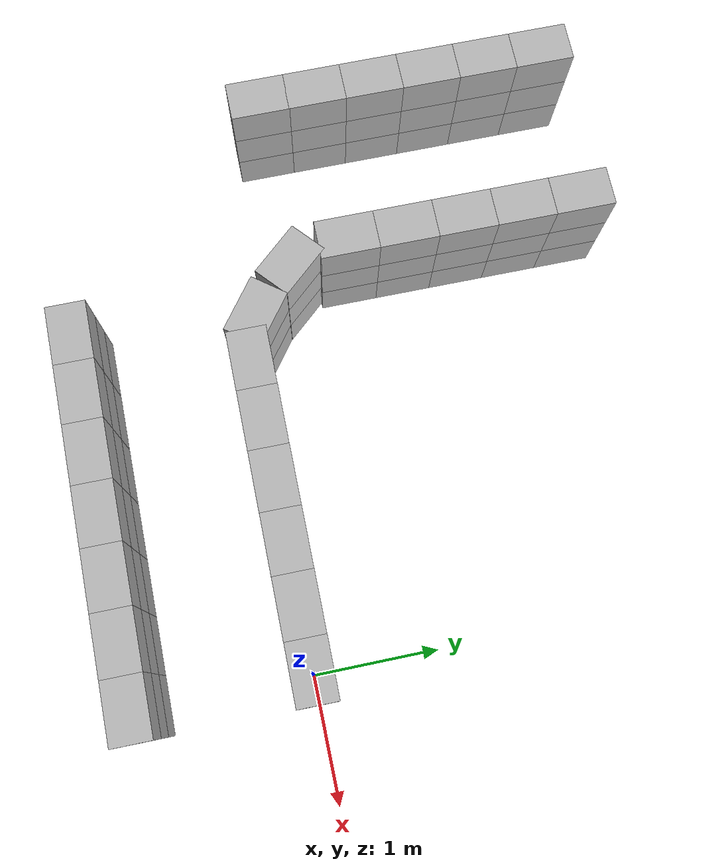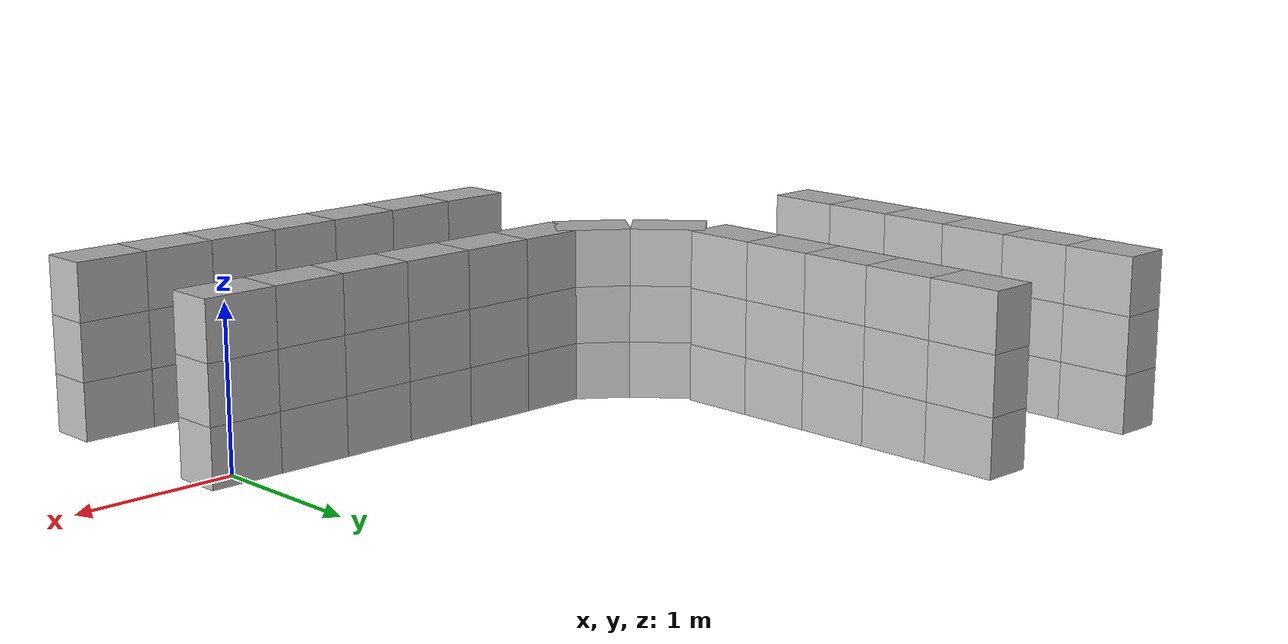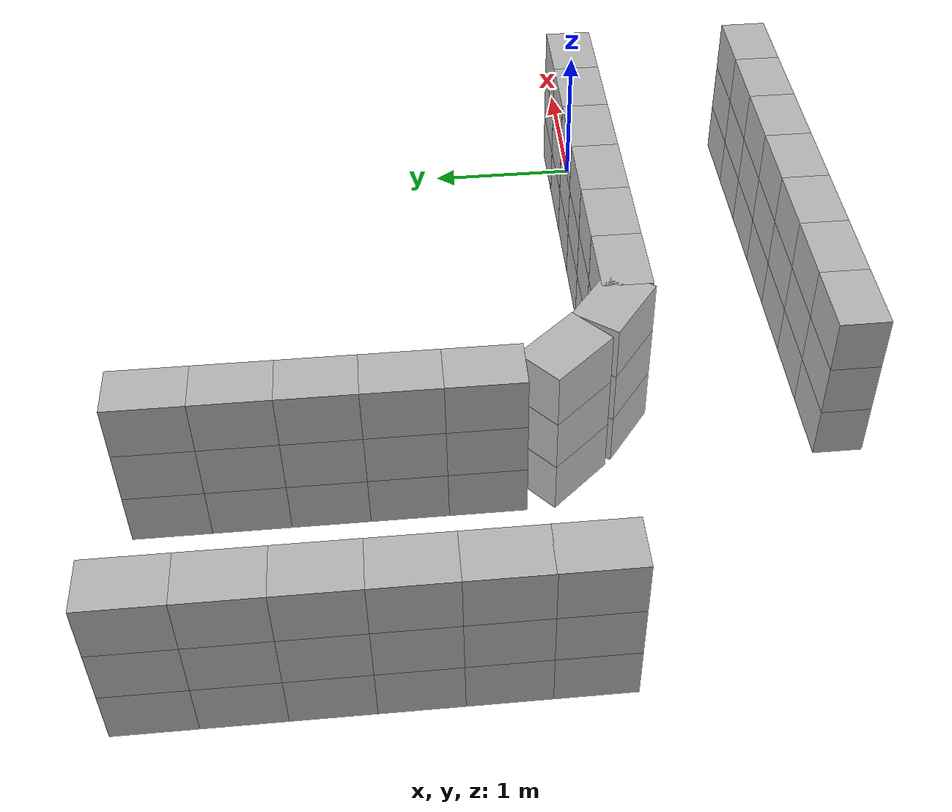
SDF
<?xml version='1_0'?>
<sdf version="1.5">
  <model name="realistic_curve">
    <pose>0 0 0 0 0 1.57079633</pose>
    <static>true</static>
    <!-- 1st row -->
    <link name="link_0">
      <collision name="collision_0">
        <pose>0 0 0.18 0 0 3.14</pose>
        <geometry>
          <box>
            <size>0.31 0.465 0.36</size>
          </box>
        </geometry>
      </collision>
      <visual name='visual_0'>
        <pose>0 0 0.18 0 0 3.14</pose>
        <geometry>
            <mesh>
              <uri>model://L-corridor_curve_real/meshes/exact_blue_circle_border.dae</uri>
            </mesh>
        </geometry>
      </visual>
    </link>

    <link name="link_1">
      <collision name="collision_1">
        <pose>0 0 0.54 0 0 3.14</pose>
        <geometry>
          <box>
            <size>0.31 0.465 0.36</size>
          </box>
        </geometry>
      </collision>
      <visual name='visual_1'>
        <pose>0 0 0.54 0 0 3.14</pose>
        <geometry>
            <mesh>
              <uri>model://L-corridor_curve_real/meshes/exact_red_circle_border.dae</uri>
            </mesh>
        </geometry>
      </visual>
    </link>

    <link name="link_2">
      <collision name="collision_2">
        <pose>0 0 0.9 0 0 3.14</pose>
        <geometry>
          <box>
            <size>0.31 0.465 0.36</size>
          </box>
        </geometry>
      </collision>
      <visual name='visual_2'>
        <pose>0 0 0.9 0 0 3.14</pose>
        <geometry>
            <mesh>
              <uri>model://L-corridor_curve_real/meshes/exact_green_circle_border.dae</uri>
            </mesh>
        </geometry>
      </visual>
    </link>
	<!-- 2 row -->
    <link name="link_3">
      <collision name="collision_3">
        <pose>0 0.465 0.54 0 0 3.14</pose>
        <geometry>
          <box>
            <size>0.31 0.465 0.36</size>
          </box>
        </geometry>
      </collision>
      <visual name='visual_3'>
        <pose>0 0.465 0.54 0 0 3.14</pose>
        <geometry>
            <mesh>
              <uri>model://L-corridor_curve_real/meshes/exact_blue_circle_border.dae</uri>
            </mesh>
        </geometry>
      </visual>
    </link>

    <link name="link_4">
      <collision name="collision_4">
        <pose>0 0.465 0.9 0 0 3.14</pose>
        <geometry>
          <box>
            <size>0.31 0.465 0.36</size>
          </box>
        </geometry>
      </collision>
      <visual name='visual_4'>
        <pose>0 0.465 0.9 0 0 3.14</pose>
        <geometry>
            <mesh>
              <uri>model://L-corridor_curve_real/meshes/exact_red_circle_border.dae</uri>
            </mesh>
        </geometry>
      </visual>
    </link>

    <link name="link_5">
      <collision name="collision_5">
        <pose>0 0.465 0.18 0 0 3.14</pose>
        <geometry>
          <box>
            <size>0.31 0.465 0.36</size>
          </box>
        </geometry>
      </collision>
      <visual name='visual_5'>
        <pose>0 0.465 0.18 0 0 3.14</pose>
        <geometry>
            <mesh>
              <uri>model://L-corridor_curve_real/meshes/exact_green_circle_border.dae</uri>
            </mesh>
        </geometry>
      </visual>
    </link>
	<!-- 3 row -->
    <link name="link_6">
      <collision name="collision_6">
        <pose>0 0.93 0.9 0 0 3.14</pose>
        <geometry>
          <box>
            <size>0.31 0.465 0.36</size>
          </box>
        </geometry>
      </collision>
      <visual name='visual_6'>
        <pose>0 0.93 0.9 0 0 3.14</pose>
        <geometry>
            <mesh>
              <uri>model://L-corridor_curve_real/meshes/exact_blue_circle_border.dae</uri>
            </mesh>
        </geometry>
      </visual>
    </link>

    <link name="link_7">
      <collision name="collision_7">
        <pose>0 0.93 0.18 0 0 3.14</pose>
        <geometry>
          <box>
            <size>0.31 0.465 0.36</size>
          </box>
        </geometry>
      </collision>
      <visual name='visual_7'>
        <pose>0 0.93 0.18 0 0 3.14</pose>
        <geometry>
            <mesh>
              <uri>model://L-corridor_curve_real/meshes/exact_red_circle_border.dae</uri>
            </mesh>
        </geometry>
      </visual>
    </link>

    <link name="link_8">
      <collision name="collision_8">
        <pose>0 0.93 0.54 0 0 3.14</pose>
        <geometry>
          <box>
            <size>0.31 0.465 0.36</size>
          </box>
        </geometry>
      </collision>
      <visual name='visual_8'>
        <pose>0 0.93 0.54 0 0 3.14</pose>
        <geometry>
            <mesh>
              <uri>model://L-corridor_curve_real/meshes/exact_green_circle_border.dae</uri>
            </mesh>
        </geometry>
      </visual>
    </link>

    <!-- 4 row -->
    <link name="link_9">
      <collision name="collision_9">
        <pose>0 1.395 0.18 0 0 3.14</pose>
        <geometry>
          <box>
            <size>0.31 0.465 0.36</size>
          </box>
        </geometry>
      </collision>
      <visual name='visual_9'>
        <pose>0 1.395 0.18 0 0 3.14</pose>
        <geometry>
            <mesh>
              <uri>model://L-corridor_curve_real/meshes/exact_blue_circle_border.dae</uri>
            </mesh>
        </geometry>
      </visual>
    </link>

    <link name="link_10">
      <collision name="collision_10">
        <pose>0 1.395 0.54 0 0 3.14</pose>
        <geometry>
          <box>
            <size>0.31 0.465 0.36</size>
          </box>
        </geometry>
      </collision>
      <visual name='visual_10'>
        <pose>0 1.395 0.54 0 0 3.14</pose>
        <geometry>
            <mesh>
              <uri>model://L-corridor_curve_real/meshes/exact_red_circle_border.dae</uri>
            </mesh>
        </geometry>
      </visual>
    </link>

    <link name="link_11">
      <collision name="collision_11">
        <pose>0 1.395 0.9 0 0 3.14</pose>
        <geometry>
          <box>
            <size>0.31 0.465 0.36</size>
          </box>
        </geometry>
      </collision>
      <visual name='visual_11'>
        <pose>0 1.395 0.9 0 0 3.14</pose>
        <geometry>
            <mesh>
              <uri>model://L-corridor_curve_real/meshes/exact_green_circle_border.dae</uri>
            </mesh>
        </geometry>
      </visual>
    </link>
	<!-- 5 row -->
    <link name="link_12">
      <collision name="collision_12">
        <pose>0 1.86 0.54 0 0 3.14</pose>
        <geometry>
          <box>
            <size>0.31 0.465 0.36</size>
          </box>
        </geometry>
      </collision>
      <visual name='visual_12'>
        <pose>0 1.86 0.54 0 0 3.14</pose>
        <geometry>
            <mesh>
              <uri>model://L-corridor_curve_real/meshes/exact_blue_circle_border.dae</uri>
            </mesh>
        </geometry>
      </visual>
    </link>

    <link name="link_13">
      <collision name="collision_13">
        <pose>0 1.86 0.9 0 0 3.14</pose>
        <geometry>
          <box>
            <size>0.31 0.465 0.36</size>
          </box>
        </geometry>
      </collision>
      <visual name='visual_13'>
        <pose>0 1.86 0.9 0 0 3.14</pose>
        <geometry>
            <mesh>
              <uri>model://L-corridor_curve_real/meshes/exact_red_circle_border.dae</uri>
            </mesh>
        </geometry>
      </visual>
    </link>

    <link name="link_14">
      <collision name="collision_14">
        <pose>0 1.86 0.18 0 0 3.14</pose>
        <geometry>
          <box>
            <size>0.31 0.465 0.36</size>
          </box>
        </geometry>
      </collision>
      <visual name='visual_14'>
        <pose>0 1.86 0.18 0 0 3.14</pose>
        <geometry>
            <mesh>
              <uri>model://L-corridor_curve_real/meshes/exact_green_circle_border.dae</uri>
            </mesh>
        </geometry>
      </visual>
    </link>
	<!-- 6 row -->
    <link name="link_15">
      <collision name="collision_15">
        <pose>0 2.325 0 0 3.14</pose>
        <geometry>
          <box>
            <size>0.31 0.465 0.36</size>
          </box>
        </geometry>
      </collision>
      <visual name='visual_15'>
        <pose>0 2.325 0.9 0 0 3.14</pose>
        <geometry>
            <mesh>
              <uri>model://L-corridor_curve_real/meshes/exact_blue_circle_border.dae</uri>
            </mesh>
        </geometry>
      </visual>
    </link>

    <link name="link_16">
      <collision name="collision_16">
        <pose>0 2.325 0.18 0 0 3.14</pose>
        <geometry>
          <box>
            <size>0.31 0.465 0.36</size>
          </box>
        </geometry>
      </collision>
      <visual name='visual_16'>
        <pose>0 2.325 0.18 0 0 3.14</pose>
        <geometry>
            <mesh>
              <uri>model://L-corridor_curve_real/meshes/exact_red_circle_border.dae</uri>
            </mesh>
        </geometry>
      </visual>
    </link>

    <link name="link_17">
      <collision name="collision_17">
        <pose>0 2.325 0.54 0 0 3.14</pose>
        <geometry>
          <box>
            <size>0.31 0.465 0.36</size>
          </box>
        </geometry>
      </collision>
      <visual name='visual_17'>
        <pose>0 2.325 0.54 0 0 3.14</pose>
        <geometry>
            <mesh>
              <uri>model://L-corridor_curve_real/meshes/exact_green_circle_border.dae</uri>
            </mesh>
        </geometry>
      </visual>
    </link>
	<!-- 7 row -->
    <link name="link_18">
      <collision name="collision_18">
        <pose>0.1 2.68 0.18 0 0 2.5</pose>
        <geometry>
          <box>
            <size>0.31 0.465 0.36</size>
          </box>
        </geometry>
      </collision>
      <visual name='visual_18'>
        <pose>0.1 2.68 0.18 0 0 2.5</pose>
        <geometry>
            <mesh>
              <uri>model://L-corridor_curve_real/meshes/exact_blue_circle_border.dae</uri>
            </mesh>
        </geometry>
      </visual>
    </link>
    <link name="link_19">
      <collision name="collision_19">
        <pose>0.1 2.68 0.54 0 0 2.5</pose>
        <geometry>
          <box>
            <size>0.31 0.465 0.36</size>
          </box>
        </geometry>
      </collision>
      <visual name='visual_19'>
        <pose>0.1 2.68 0.54 0 0 2.5</pose>
        <geometry>
            <mesh>
              <uri>model://L-corridor_curve_real/meshes/exact_red_circle_border.dae</uri>
            </mesh>
        </geometry>
      </visual>
    </link>

    <link name="link_20">
      <collision name="collision_20">
        <pose>0.1 2.68 0.9 0 0 2.5</pose>
        <geometry>
          <box>
            <size>0.31 0.465 0.36</size>
          </box>
        </geometry>
      </collision>
      <visual name='visual_20'>
        <pose>0.1 2.68 0.9 0 0 2.5</pose>
        <geometry>
            <mesh>
              <uri>model://L-corridor_curve_real/meshes/exact_green_circle_border.dae</uri>
            </mesh>
        </geometry>
      </visual>
    </link>
	<!-- 8 row -->
    <link name="link_21">
      <collision name="collision_21">
        <pose>0.43 3.035 0.54 0 0 2.3</pose>
        <geometry>
          <box>
            <size>0.31 0.465 0.36</size>
          </box>
        </geometry>
      </collision>
      <visual name='visual_21'>
        <pose>0.43 3.035 0.54 0 0 2.3</pose>
        <geometry>
            <mesh>
              <uri>model://L-corridor_curve_real/meshes/exact_blue_circle_border.dae</uri>
            </mesh>
        </geometry>
      </visual>
    </link>

    <link name="link_22">
      <collision name="collision_22">
        <pose>0.43 2.325 0.9 0 0 2.3</pose>
        <geometry>
          <box>
            <size>0.31 0.465 0.36</size>
          </box>
        </geometry>
      </collision>
      <visual name='visual_22'>
        <pose>0.43 3.035 0.9 0 0 2.3</pose>
        <geometry>
            <mesh>
              <uri>model://L-corridor_curve_real/meshes/exact_red_circle_border.dae</uri>
            </mesh>
        </geometry>
      </visual>
    </link>

    <link name="link_23">
      <collision name="collision_23">
        <pose>0.43 3.035 0.18 0 0 2.3</pose>
        <geometry>
          <box>
            <size>0.31 0.465 0.36</size>
          </box>
        </geometry>
      </collision>
      <visual name='visual_23'>
        <pose>0.43 3.035 0.18 0 0 2.3</pose>
        <geometry>
            <mesh>
              <uri>model://L-corridor_curve_real/meshes/exact_green_circle_border.dae</uri>
            </mesh>
        </geometry>
      </visual>
    </link>

	<!-- 9 row -->
    <link name="link_24">
      <collision name="collision_24">
        <pose>0.9 3.15 0.9 0 1.5708</pose>
        <geometry>
          <box>
            <size>0.31 0.465 0.36</size>
          </box>
        </geometry>
      </collision>
      <visual name='visual_24'>
        <pose>0.9 3.15 0.9 0 0 1.5708</pose>
        <geometry>
            <mesh>
              <uri>model://L-corridor_curve_real/meshes/exact_blue_circle_border.dae</uri>
            </mesh>
        </geometry>
      </visual>
    </link>

    <link name="link_25">
      <collision name="collision_25">
        <pose>0.9 3.15 0.18 0 0 1.5708</pose>
        <geometry>
          <box>
            <size>0.31 0.465 0.36</size>
          </box>
        </geometry>
      </collision>
      <visual name='visual_25'>
        <pose>0.9 3.15 0.18 0 0 1.5708</pose>
        <geometry>
            <mesh>
              <uri>model://L-corridor_curve_real/meshes/exact_red_circle_border.dae</uri>
            </mesh>
        </geometry>
      </visual>
    </link>

    <link name="link_26">
      <collision name="collision_26">
        <pose>0.9 3.15 0.54 0 0 1.5708</pose>
        <geometry>
          <box>
            <size>0.31 0.465 0.36</size>
          </box>
        </geometry>
      </collision>
      <visual name='visual_26'>
        <pose>0.9 3.15 0.54 0 0 1.5708</pose>
        <geometry>
            <mesh>
              <uri>model://L-corridor_curve_real/meshes/exact_green_circle_border.dae</uri>
            </mesh>
        </geometry>
      </visual>
    </link>

	<!-- 10 row -->
    <link name="link_27">
      <collision name="collision_27">
        <pose>1.365 3.15 0.18 0 0 1.5708</pose>
        <geometry>
          <box>
            <size>0.31 0.465 0.36</size>
          </box>
        </geometry>
      </collision>
      <visual name='visual_27'>
        <pose>1.365 3.15 0.18 0 0 1.5708</pose>
        <geometry>
            <mesh>
              <uri>model://L-corridor_curve_real/meshes/exact_blue_circle_border.dae</uri>
            </mesh>
        </geometry>
      </visual>
    </link>
    <link name="link_28">
      <collision name="collision_28">
        <pose>1.365 3.15 0.54 0 0 1.5708</pose>
        <geometry>
          <box>
            <size>0.31 0.465 0.36</size>
          </box>
        </geometry>
      </collision>
      <visual name='visual_28'>
        <pose>1.365 3.15 0.54 0 0 1.5708</pose>
        <geometry>
            <mesh>
              <uri>model://L-corridor_curve_real/meshes/exact_red_circle_border.dae</uri>
            </mesh>
        </geometry>
      </visual>
    </link>

    <link name="link_29">
      <collision name="collision_29">
        <pose>1.365 3.15 0.9 0 0 1.5708</pose>
        <geometry>
          <box>
            <size>0.31 0.465 0.36</size>
          </box>
        </geometry>
      </collision>
      <visual name='visual_29'>
        <pose>1.365 3.15 0.9 0 0 1.5708</pose>
        <geometry>
            <mesh>
              <uri>model://L-corridor_curve_real/meshes/exact_green_circle_border.dae</uri>
            </mesh>
        </geometry>
      </visual>
    </link>

	<!-- 11 row -->
    <link name="link_30">
      <collision name="collision_30">
        <pose>1.83 3.15 0.54 0 0 1.5708</pose>
        <geometry>
          <box>
            <size>0.31 0.465 0.36</size>
          </box>
        </geometry>
      </collision>
      <visual name='visual_30'>
        <pose>1.83 3.15 0.54 0 0 1.5708</pose>
        <geometry>
            <mesh>
              <uri>model://L-corridor_curve_real/meshes/exact_blue_circle_border.dae</uri>
            </mesh>
        </geometry>
      </visual>
    </link>

    <link name="link_31">
      <collision name="collision_31">
        <pose>1.83 3.15 0.9 0 0 1.5708</pose>
        <geometry>
          <box>
            <size>0.31 0.465 0.36</size>
          </box>
        </geometry>
      </collision>
      <visual name='visual_31'>
        <pose>1.83 3.15 0.9 0 0 1.5708</pose>
        <geometry>
            <mesh>
              <uri>model://L-corridor_curve_real/meshes/exact_red_circle_border.dae</uri>
            </mesh>
        </geometry>
      </visual>
    </link>

    <link name="link_32">
      <collision name="collision_32">
        <pose>1.83 3.15 0.18 0 0 1.5708</pose>
        <geometry>
          <box>
            <size>0.31 0.465 0.36</size>
          </box>
        </geometry>
      </collision>
      <visual name='visual_32'>
        <pose>1.83 3.15 0.18 0 0 1.5708</pose>
        <geometry>
            <mesh>
              <uri>model://L-corridor_curve_real/meshes/exact_green_circle_border.dae</uri>
            </mesh>
        </geometry>
      </visual>
    </link>

	<!-- 12 row -->
    <link name="link_33">
      <collision name="collision_33">
        <pose>2.295 3.15 0.9 0 1.5708</pose>
        <geometry>
          <box>
            <size>0.31 0.465 0.36</size>
          </box>
        </geometry>
      </collision>
      <visual name='visual_33'>
        <pose>2.295 3.15 0.9 0 0 1.5708</pose>
        <geometry>
            <mesh>
              <uri>model://L-corridor_curve_real/meshes/exact_blue_circle_border.dae</uri>
            </mesh>
        </geometry>
      </visual>
    </link>

    <link name="link_34">
      <collision name="collision_34">
        <pose>2.295 3.15 0.18 0 0 1.5708</pose>
        <geometry>
          <box>
            <size>0.31 0.465 0.36</size>
          </box>
        </geometry>
      </collision>
      <visual name='visual_34'>
        <pose>2.295 3.15 0.18 0 0 1.5708</pose>
        <geometry>
            <mesh>
              <uri>model://L-corridor_curve_real/meshes/exact_red_circle_border.dae</uri>
            </mesh>
        </geometry>
      </visual>
    </link>

    <link name="link_35">
      <collision name="collision_35">
        <pose>2.295 3.15 0.54 0 0 1.5708</pose>
        <geometry>
          <box>
            <size>0.31 0.465 0.36</size>
          </box>
        </geometry>
      </collision>
      <visual name='visual_35'>
        <pose>2.295 3.15 0.54 0 0 1.5708</pose>
        <geometry>
            <mesh>
              <uri>model://L-corridor_curve_real/meshes/exact_green_circle_border.dae</uri>
            </mesh>
        </geometry>
      </visual>
    </link>

	<!-- 10 row -->
    <link name="link_36">
      <collision name="collision_36">
        <pose>2.76 3.15 0.18 0 0 1.5708</pose>
        <geometry>
          <box>
            <size>0.31 0.465 0.36</size>
          </box>
        </geometry>
      </collision>
      <visual name='visual_36'>
        <pose>2.76 3.15 0.18 0 0 1.5708</pose>
        <geometry>
            <mesh>
              <uri>model://L-corridor_curve_real/meshes/exact_blue_circle_border.dae</uri>
            </mesh>
        </geometry>
      </visual>
    </link>
    <link name="link_37">
      <collision name="collision_37">
        <pose>2.76 3.15 0.54 0 0 1.5708</pose>
        <geometry>
          <box>
            <size>0.31 0.465 0.36</size>
          </box>
        </geometry>
      </collision>
      <visual name='visual_37'>
        <pose>2.76 3.15 0.54 0 0 1.5708</pose>
        <geometry>
            <mesh>
              <uri>model://L-corridor_curve_real/meshes/exact_red_circle_border.dae</uri>
            </mesh>
        </geometry>
      </visual>
    </link>

    <link name="link_38">
      <collision name="collision_38">
        <pose>2.76 3.15 0.9 0 0 1.5708</pose>
        <geometry>
          <box>
            <size>0.31 0.465 0.36</size>
          </box>
        </geometry>
      </collision>
      <visual name='visual_38'>
        <pose>2.76 3.15 0.9 0 0 1.5708</pose>
        <geometry>
            <mesh>
              <uri>model://L-corridor_curve_real/meshes/exact_green_circle_border.dae</uri>
            </mesh>
        </geometry>
      </visual>
    </link>

<!--1st corridor wall facing-->
   <!-- 1st row -->
    <link name="link_0_0">
      <collision name="collision_0_0">
        <pose>-1.3 0 0.18 0 0 0</pose>
        <geometry>
          <box>
            <size>0.31 0.465 0.36</size>
          </box>
        </geometry>
      </collision>
      <visual name='visual_0_0'>
        <pose>-1.3 0 0.18 0 0 0</pose>
        <geometry>
            <mesh>
              <uri>model://L-corridor_curve_real/meshes/exact_blue_circle_border.dae</uri>
            </mesh>
        </geometry>
      </visual>
    </link>

    <link name="link_1_0">
      <collision name="collision_1_0">
        <pose> -1.3 0.54 0 0 0</pose>
        <geometry>
          <box>
            <size>0.31 0.465 0.36</size>
          </box>
        </geometry>
      </collision>
      <visual name='visual_1_0'>
        <pose>-1.3 0 0.54 0 0 0</pose>
        <geometry>
            <mesh>
              <uri>model://L-corridor_curve_real/meshes/exact_red_circle_border.dae</uri>
            </mesh>
        </geometry>
      </visual>
    </link>

    <link name="link_2_0">
      <collision name="collision_2_0">
        <pose>-1.3 0 0.9 0 0 0</pose>
        <geometry>
          <box>
            <size>0.31 0.465 0.36</size>
          </box>
        </geometry>
      </collision>
      <visual name='visual_2_0'>
        <pose>-1.3 0 0.9 0 0 0</pose>
        <geometry>
            <mesh>
              <uri>model://L-corridor_curve_real/meshes/exact_green_circle_border.dae</uri>
            </mesh>
        </geometry>
      </visual>
    </link>
	<!-- 2 row -->
    <link name="link_3_0">
      <collision name="collision_3_0">
        <pose>-1.3 0.465 0.54 0 0 0</pose>
        <geometry>
          <box>
            <size>0.31 0.465 0.36</size>
          </box>
        </geometry>
      </collision>
      <visual name='visual_3_0'>
        <pose>-1.3 0.465 0.54 0 0 0</pose>
        <geometry>
            <mesh>
              <uri>model://L-corridor_curve_real/meshes/exact_blue_circle_border.dae</uri>
            </mesh>
        </geometry>
      </visual>
    </link>

    <link name="link_4_0">
      <collision name="collision_4_0">
        <pose>-1.3 0.465 0.9 0 0 0</pose>
        <geometry>
          <box>
            <size>0.31 0.465 0.36</size>
          </box>
        </geometry>
      </collision>
      <visual name='visual_4_0'>
        <pose>-1.3 0.465 0.9 0 0 0</pose>
        <geometry>
            <mesh>
              <uri>model://L-corridor_curve_real/meshes/exact_red_circle_border.dae</uri>
            </mesh>
        </geometry>
      </visual>
    </link>

    <link name="link_5_0">
      <collision name="collision_5_0">
        <pose>-1.3 0.465 0.18 0 0 0</pose>
        <geometry>
          <box>
            <size>0.31 0.465 0.36</size>
          </box>
        </geometry>
      </collision>
      <visual name='visual_5_0'>
        <pose>-1.3 0.465 0.18 0 0 0</pose>
        <geometry>
            <mesh>
              <uri>model://L-corridor_curve_real/meshes/exact_green_circle_border.dae</uri>
            </mesh>
        </geometry>
      </visual>
    </link>
	<!-- 3 row -->
    <link name="link_6_0">
      <collision name="collision_6_0">
        <pose>-1.3 0.93 0.9 0 0 0</pose>
        <geometry>
          <box>
            <size>0.31 0.465 0.36</size>
          </box>
        </geometry>
      </collision>
      <visual name='visual_6_0'>
        <pose>-1.3 0.93 0.9 0 0 0</pose>
        <geometry>
            <mesh>
              <uri>model://L-corridor_curve_real/meshes/exact_blue_circle_border.dae</uri>
            </mesh>
        </geometry>
      </visual>
    </link>

    <link name="link_7_0">
      <collision name="collision_7_0">
        <pose>-1.3 0.93 0.18 0 0 0</pose>
        <geometry>
          <box>
            <size>0.31 0.465 0.36</size>
          </box>
        </geometry>
      </collision>
      <visual name='visual_7_0'>
        <pose>-1.3 0.93 0.18 0 0 0</pose>
        <geometry>
            <mesh>
              <uri>model://L-corridor_curve_real/meshes/exact_red_circle_border.dae</uri>
            </mesh>
        </geometry>
      </visual>
    </link>

    <link name="link_8_0">
      <collision name="collision_8_0">
        <pose>-1.3 0.93 0.54 0 0 0</pose>
        <geometry>
          <box>
            <size>0.31 0.465 0.36</size>
          </box>
        </geometry>
      </collision>
      <visual name='visual_8_0'>
        <pose>-1.3 0.93 0.54 0 0 0</pose>
        <geometry>
            <mesh>
              <uri>model://L-corridor_curve_real/meshes/exact_green_circle_border.dae</uri>
            </mesh>
        </geometry>
      </visual>
    </link>

    <!-- 4 row -->
    <link name="link_9_0">
      <collision name="collision_9_0">
        <pose>-1.3 1.395 0.18 0 0 0</pose>
        <geometry>
          <box>
            <size>0.31 0.465 0.36</size>
          </box>
        </geometry>
      </collision>
      <visual name='visual_9_0'>
        <pose>-1.3 1.395 0.18 0 0 0</pose>
        <geometry>
            <mesh>
              <uri>model://L-corridor_curve_real/meshes/exact_blue_circle_border.dae</uri>
            </mesh>
        </geometry>
      </visual>
    </link>

    <link name="link_10_0">
      <collision name="collision_10_0">
        <pose>-1.3 1.395 0.54 0 0 0</pose>
        <geometry>
          <box>
            <size>0.31 0.465 0.36</size>
          </box>
        </geometry>
      </collision>
      <visual name='visual_10_0'>
        <pose>-1.3 1.395 0.54 0 0 0</pose>
        <geometry>
            <mesh>
              <uri>model://L-corridor_curve_real/meshes/exact_red_circle_border.dae</uri>
            </mesh>
        </geometry>
      </visual>
    </link>

    <link name="link_11_0">
      <collision name="collision_11_0">
        <pose>-1.3 1.395 0.9 0 0 0</pose>
        <geometry>
          <box>
            <size>0.31 0.465 0.36</size>
          </box>
        </geometry>
      </collision>
      <visual name='visual_11_0'>
        <pose>-1.3 1.395 0.9 0 0 0</pose>
        <geometry>
            <mesh>
              <uri>model://L-corridor_curve_real/meshes/exact_green_circle_border.dae</uri>
            </mesh>
        </geometry>
      </visual>
    </link>

	<!-- 5 row -->
    <link name="link_12_0">
      <collision name="collision_12_0">
        <pose>-1.3 1.86 0.54 0 0 0</pose>
        <geometry>
          <box>
            <size>0.31 0.465 0.36</size>
          </box>
        </geometry>
      </collision>
      <visual name='visual_12_0'>
        <pose>-1.3 1.86 0.54 0 0 0</pose>
        <geometry>
            <mesh>
              <uri>model://L-corridor_curve_real/meshes/exact_blue_circle_border.dae</uri>
            </mesh>
        </geometry>
      </visual>
    </link>

    <link name="link_13_0">
      <collision name="collision_13_0">
        <pose>-1.3 1.86 0.9 0 0 0</pose>
        <geometry>
          <box>
            <size>0.31 0.465 0.36</size>
          </box>
        </geometry>
      </collision>
      <visual name='visual_13_0'>
        <pose>-1.3 1.86 0.9 0 0 0</pose>
        <geometry>
            <mesh>
              <uri>model://L-corridor_curve_real/meshes/exact_red_circle_border.dae</uri>
            </mesh>
        </geometry>
      </visual>
    </link>

    <link name="link_14_0">
      <collision name="collision_14_0">
        <pose>-1.3 1.86 0.18 0 0 0</pose>
        <geometry>
          <box>
            <size>0.31 0.465 0.36</size>
          </box>
        </geometry>
      </collision>
      <visual name='visual_14_0'>
        <pose>-1.3 1.86 0.18 0 0 0</pose>
        <geometry>
            <mesh>
              <uri>model://L-corridor_curve_real/meshes/exact_green_circle_border.dae</uri>
            </mesh>
        </geometry>
      </visual>
    </link>
	<!-- 6 row -->
    <link name="link_15_0">
      <collision name="collision_15_0">
        <pose>-1.3 2.325 0 0 0</pose>
        <geometry>
          <box>
            <size>0.31 0.465 0.36</size>
          </box>
        </geometry>
      </collision>
      <visual name='visual_15_0'>
        <pose>-1.3 2.325 0.9 0 0 0</pose>
        <geometry>
            <mesh>
              <uri>model://L-corridor_curve_real/meshes/exact_blue_circle_border.dae</uri>
            </mesh>
        </geometry>
      </visual>
    </link>

    <link name="link_16_0">
      <collision name="collision_16_0">
        <pose>-1.3 2.325 0.18 0 0 0</pose>
        <geometry>
          <box>
            <size>0.31 0.465 0.36</size>
          </box>
        </geometry>
      </collision>
      <visual name='visual_16_0'>
        <pose>-1.3 2.325 0.18 0 0 0</pose>
        <geometry>
            <mesh>
              <uri>model://L-corridor_curve_real/meshes/exact_red_circle_border.dae</uri>
            </mesh>
        </geometry>
      </visual>
    </link>

    <link name="link_17_0">
      <collision name="collision_17_0">
        <pose>-1.3 2.325 0.54 0 0 0</pose>
        <geometry>
          <box>
            <size>0.31 0.465 0.36</size>
          </box>
        </geometry>
      </collision>
      <visual name='visual_17_0'>
        <pose>-1.3 2.325 0.54 0 0 0</pose>
        <geometry>
            <mesh>
              <uri>model://L-corridor_curve_real/meshes/exact_green_circle_border.dae</uri>
            </mesh>
        </geometry>
      </visual>
    </link>
	<!-- 9 row -->
    <link name="link_18_0">
      <collision name="collision_18_0">
        <pose>0.9 4.45 0.9 0 -1.5708</pose>
        <geometry>
          <box>
            <size>0.31 0.465 0.36</size>
          </box>
        </geometry>
      </collision>
      <visual name='visual_18_0'>
        <pose>0.9 4.45 0.9 0 0 -1.5708</pose>
        <geometry>
            <mesh>
              <uri>model://L-corridor_curve_real/meshes/exact_blue_circle_border.dae</uri>
            </mesh>
        </geometry>
      </visual>
    </link>

    <link name="link_19_0">
      <collision name="collision_19_0">
        <pose>0.9 4.45 0.18 0 0 -1.5708</pose>
        <geometry>
          <box>
            <size>0.31 0.465 0.36</size>
          </box>
        </geometry>
      </collision>
      <visual name='visual_19_0'>
        <pose>0.9 4.45 0.18 0 0 -1.5708</pose>
        <geometry>
            <mesh>
              <uri>model://L-corridor_curve_real/meshes/exact_red_circle_border.dae</uri>
            </mesh>
        </geometry>
      </visual>
    </link>

    <link name="link_20_0">
      <collision name="collision_20_0">
        <pose>0.9 4.45 0.54 0 0 -1.5708</pose>
        <geometry>
          <box>
            <size>0.31 0.465 0.36</size>
          </box>
        </geometry>
      </collision>
      <visual name='visual_20_0'>
        <pose>0.9 4.45 0.54 0 0 -1.5708</pose>
        <geometry>
            <mesh>
              <uri>model://L-corridor_curve_real/meshes/exact_green_circle_border.dae</uri>
            </mesh>
        </geometry>
      </visual>
    </link>

	<!-- 10 row -->
    <link name="link_21_0">
      <collision name="collision_21_0">
        <pose>1.365 4.45 0.18 0 0 -1.5708</pose>
        <geometry>
          <box>
            <size>0.31 0.465 0.36</size>
          </box>
        </geometry>
      </collision>
      <visual name='visual_21_0'>
        <pose>1.365 4.45 0.18 0 0 -1.5708</pose>
        <geometry>
            <mesh>
              <uri>model://L-corridor_curve_real/meshes/exact_blue_circle_border.dae</uri>
            </mesh>
        </geometry>
      </visual>
    </link>
    <link name="link_22_0">
      <collision name="collision_22_0">
        <pose>1.365 4.45 0.54 0 0 -1.5708</pose>
        <geometry>
          <box>
            <size>0.31 0.465 0.36</size>
          </box>
        </geometry>
      </collision>
      <visual name='visual_22_0'>
        <pose>1.365 4.45 0.54 0 0 -1.5708</pose>
        <geometry>
            <mesh>
              <uri>model://L-corridor_curve_real/meshes/exact_red_circle_border.dae</uri>
            </mesh>
        </geometry>
      </visual>
    </link>

    <link name="link_23_0">
      <collision name="collision_23_0">
        <pose>1.365 4.45 0.9 0 0 -1.5708</pose>
        <geometry>
          <box>
            <size>0.31 0.465 0.36</size>
          </box>
        </geometry>
      </collision>
      <visual name='visual_23_0'>
        <pose>1.365 4.45 0.9 0 0 -1.5708</pose>
        <geometry>
            <mesh>
              <uri>model://L-corridor_curve_real/meshes/exact_green_circle_border.dae</uri>
            </mesh>
        </geometry>
      </visual>
    </link>

	<!-- 11 row-->
    <link name="link_24_0">
      <collision name="collision_24_0">
        <pose>1.83 4.45 0.54 0 0 -1.5708</pose>
        <geometry>
          <box>
            <size>0.31 0.465 0.36</size>
          </box>
        </geometry>
      </collision>
      <visual name='visual_24_0'>
        <pose>1.83 4.45 0.54 0 0 -1.5708</pose>
        <geometry>
            <mesh>
              <uri>model://L-corridor_curve_real/meshes/exact_blue_circle_border.dae</uri>
            </mesh>
        </geometry>
      </visual>
    </link>

    <link name="link_25_0">
      <collision name="collision_25_0">
        <pose>1.83 4.45 0.9 0 0 -1.5708</pose>
        <geometry>
          <box>
            <size>0.31 0.465 0.36</size>
          </box>
        </geometry>
      </collision>
      <visual name='visual_25_0'>
        <pose>1.83 4.45 0.9 0 0 -1.5708</pose>
        <geometry>
            <mesh>
              <uri>model://L-corridor_curve_real/meshes/exact_red_circle_border.dae</uri>
            </mesh>
        </geometry>
      </visual>
    </link>

    <link name="link_26_0">
      <collision name="collision_26_0">
        <pose>1.83 4.45 0.18 0 0 -1.5708</pose>
        <geometry>
          <box>
            <size>0.31 0.465 0.36</size>
          </box>
        </geometry>
      </collision>
      <visual name='visual_26_0'>
        <pose>1.83 4.45 0.18 0 0 -1.5708</pose>
        <geometry>
            <mesh>
              <uri>model://L-corridor_curve_real/meshes/exact_green_circle_border.dae</uri>
            </mesh>
        </geometry>
      </visual>
    </link>

	<!-- 12 row -->
    <link name="link_27_0">
      <collision name="collision_27_0">
        <pose>2.295 4.45 0.9 0 -1.5708</pose>
        <geometry>
          <box>
            <size>0.31 0.465 0.36</size>
          </box>
        </geometry>
      </collision>
      <visual name='visual_27_0'>
        <pose>2.295 4.45 0.9 0 0 -1.5708</pose>
        <geometry>
            <mesh>
              <uri>model://L-corridor_curve_real/meshes/exact_blue_circle_border.dae</uri>
            </mesh>
        </geometry>
      </visual>
    </link>

    <link name="link_28_0">
      <collision name="collision_28_0">
        <pose>2.295 4.45 0.18 0 0 -1.5708</pose>
        <geometry>
          <box>
            <size>0.31 0.465 0.36</size>
          </box>
        </geometry>
      </collision>
      <visual name='visual_28_0'>
        <pose>2.295 4.45 0.18 0 0 -1.5708</pose>
        <geometry>
            <mesh>
              <uri>model://L-corridor_curve_real/meshes/exact_red_circle_border.dae</uri>
            </mesh>
        </geometry>
      </visual>
    </link>

    <link name="link_29_0">
      <collision name="collision_29_0">
        <pose>2.295 4.45 0.54 0 0 -1.5708</pose>
        <geometry>
          <box>
            <size>0.31 0.465 0.36</size>
          </box>
        </geometry>
      </collision>
      <visual name='visual_29_0'>
        <pose>2.295 4.45 0.54 0 0 -1.5708</pose>
        <geometry>
            <mesh>
              <uri>model://L-corridor_curve_real/meshes/exact_green_circle_border.dae</uri>
            </mesh>
        </geometry>
      </visual>
    </link>

	<!-- 10 row -->
    <link name="link_30_0">
      <collision name="collision_30_0">
        <pose>2.76 4.45 0.18 0 0 -1.5708</pose>
        <geometry>
          <box>
            <size>0.31 0.465 0.36</size>
          </box>
        </geometry>
      </collision>
      <visual name='visual_30_0'>
        <pose>2.76 4.45 0.18 0 0 -1.5708</pose>
        <geometry>
            <mesh>
              <uri>model://L-corridor_curve_real/meshes/exact_blue_circle_border.dae</uri>
            </mesh>
        </geometry>
      </visual>
    </link>
    <link name="link_31_0">
      <collision name="collision_31_0">
        <pose>2.76 4.45 0.54 0 0 -1.5708</pose>
        <geometry>
          <box>
            <size>0.31 0.465 0.36</size>
          </box>
        </geometry>
      </collision>
      <visual name='visual_31_0'>
        <pose>2.76 4.45 0.54 0 0 -1.5708</pose>
        <geometry>
            <mesh>
              <uri>model://L-corridor_curve_real/meshes/exact_red_circle_border.dae</uri>
            </mesh>
        </geometry>
      </visual>
    </link>

    <link name="link_32_0">
      <collision name="collision_32_0">
        <pose>2.76 4.45 0.9 0 0 -1.5708</pose>
        <geometry>
          <box>
            <size>0.31 0.465 0.36</size>
          </box>
        </geometry>
      </collision>
      <visual name='visual_32_0'>
        <pose>2.76 4.45 0.9 0 0 -1.5708</pose>
        <geometry>
            <mesh>
              <uri>model://L-corridor_curve_real/meshes/exact_green_circle_border.dae</uri>
            </mesh>
        </geometry>
      </visual>
    </link>
	<!-- 8 row -->
    <link name="link_33_0">
      <collision name="collision_33_0">
        <pose>0.44 4.45 0.54 0 0 -1.5708</pose>
        <geometry>
          <box>
            <size>0.31 0.465 0.36</size>
          </box>
        </geometry>
      </collision>
      <visual name='visual_33_0'>
        <pose>0.44 4.45 0.54 0 0 -1.5708</pose>
        <geometry>
            <mesh>
              <uri>model://L-corridor_curve_real/meshes/exact_blue_circle_border.dae</uri>
            </mesh>
        </geometry>
      </visual>
    </link>
    <link name="link_34_0">
      <collision name="collision_34_0">
        <pose>0.4 4.45 0.9 0 0 -1.5708</pose>
        <geometry>
          <box>
            <size>0.31 0.465 0.36</size>
          </box>
        </geometry>
      </collision>
      <visual name='visual_34_0'>
        <pose>0.44 4.45 0.9 0 0 -1.5708</pose>
        <geometry>
            <mesh>
              <uri>model://L-corridor_curve_real/meshes/exact_red_circle_border.dae</uri>
            </mesh>
        </geometry>
      </visual>
    </link>

    <link name="link_35_0">
      <collision name="collision_35_0">
        <pose>0.44 4.45 0.18 0 0 -1.5708</pose>
        <geometry>
          <box>
            <size>0.31 0.465 0.36</size>
          </box>
        </geometry>
      </collision>
      <visual name='visual_35_0'>
        <pose>0.44 4.45 0.18 0 0 -1.5708</pose>
        <geometry>
            <mesh>
              <uri>model://L-corridor_curve_real/meshes/exact_green_circle_border.dae</uri>
            </mesh>
        </geometry>
      </visual>
    </link>

	<!-- 6 row -->
    <link name="link_36_0">
      <collision name="collision_36_0">
        <pose>-1.3 2.79 0 0 0</pose>
        <geometry>
          <box>
            <size>0.31 0.465 0.36</size>
          </box>
        </geometry>
      </collision>
      <visual name='visual_36_0'>
        <pose>-1.3 2.79 0.9 0 0 0</pose>
        <geometry>
            <mesh>
              <uri>model://L-corridor_curve_real/meshes/exact_blue_circle_border.dae</uri>
            </mesh>
        </geometry>
      </visual>
    </link>

    <link name="link_37_0">
      <collision name="collision_37_0">
        <pose>-1.3 2.79 0.18 0 0 0</pose>
        <geometry>
          <box>
            <size>0.31 0.465 0.36</size>
          </box>
        </geometry>
      </collision>
      <visual name='visual_37_0'>
        <pose>-1.3 2.79 0.18 0 0 0</pose>
        <geometry>
            <mesh>
              <uri>model://L-corridor_curve_real/meshes/exact_red_circle_border.dae</uri>
            </mesh>
        </geometry>
      </visual>
    </link>

    <link name="link_38_0">
      <collision name="collision_38_0">
        <pose>-1.3 2.79 0.54 0 0 0</pose>
        <geometry>
          <box>
            <size>0.31 0.465 0.36</size>
          </box>
        </geometry>
      </collision>
      <visual name='visual_38_0'>
        <pose>-1.3 2.79 0.54 0 0 0</pose>
        <geometry>
            <mesh>
              <uri>model://L-corridor_curve_real/meshes/exact_green_circle_border.dae</uri>
            </mesh>
        </geometry>
      </visual>
    </link>

  </model>
</sdf>
